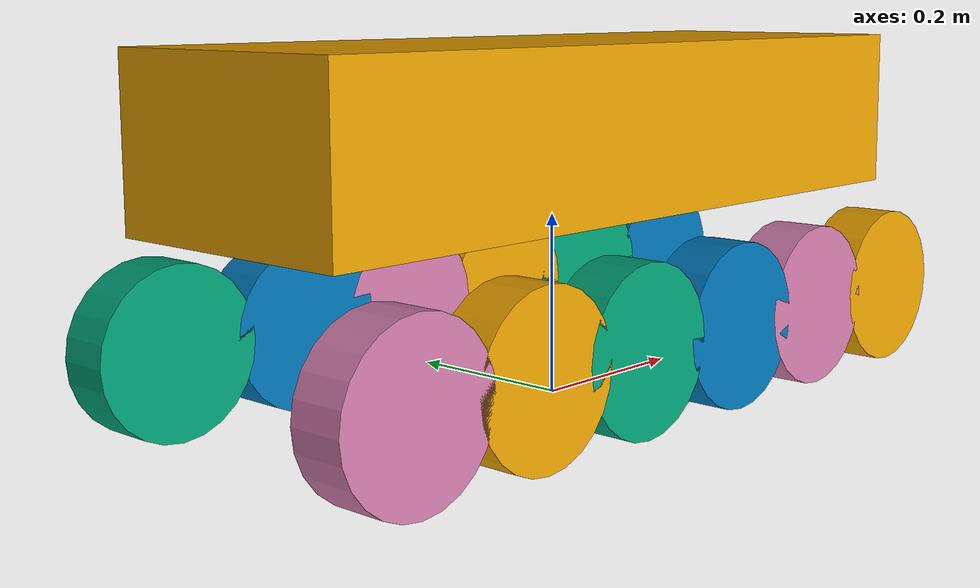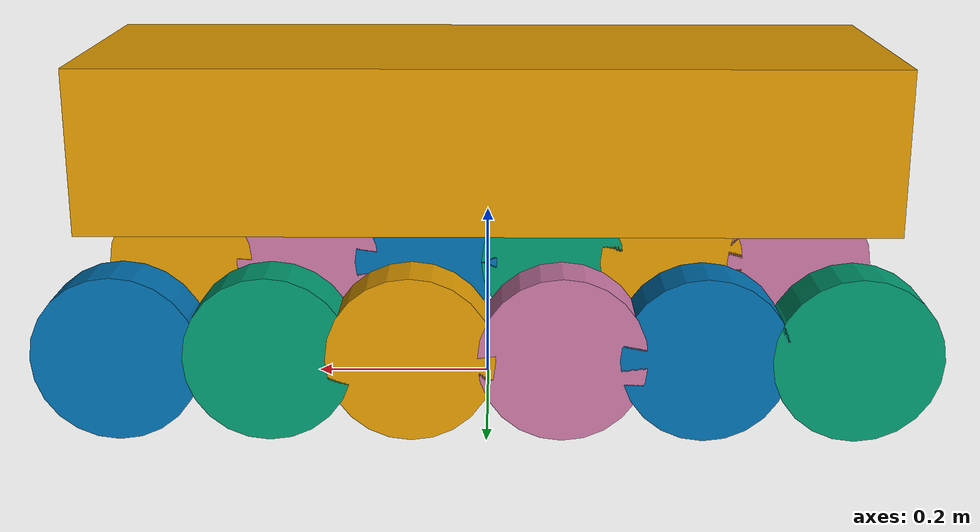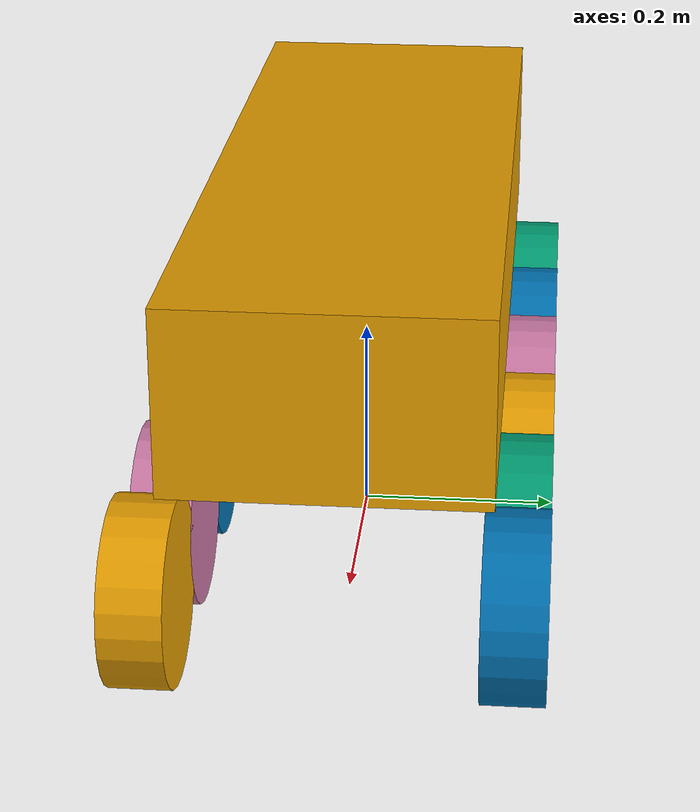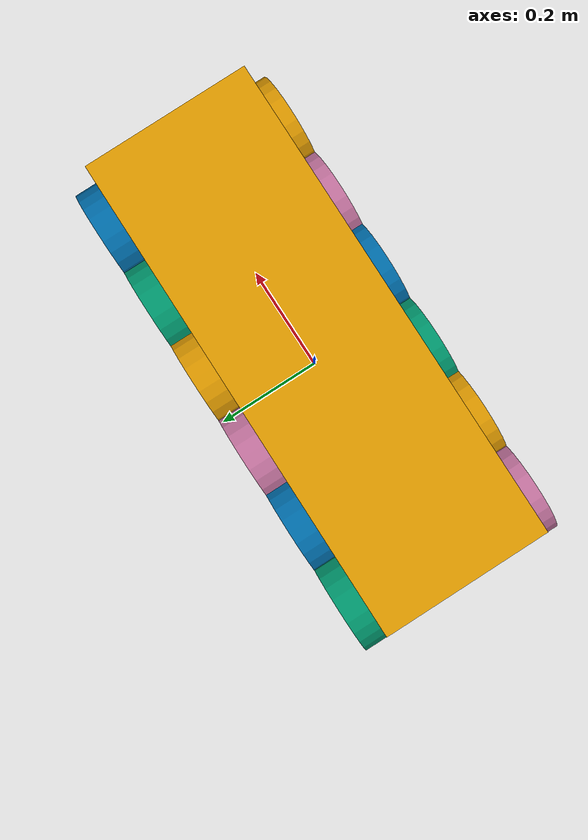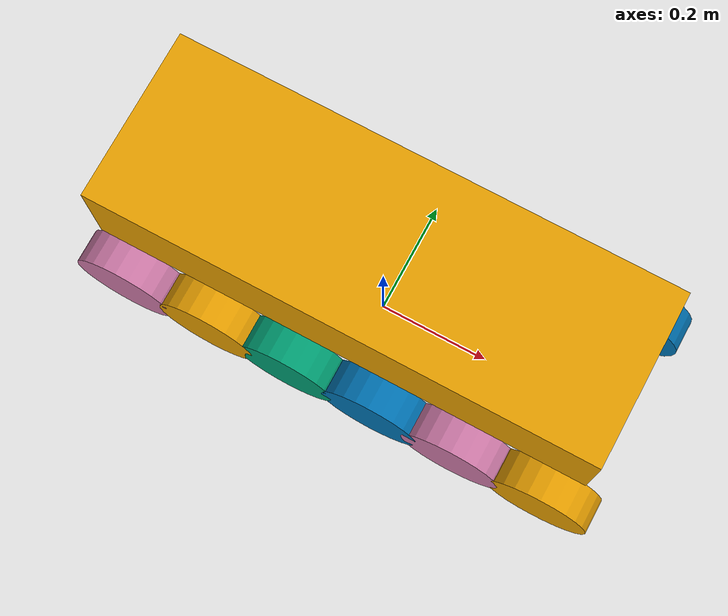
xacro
<?xml version='1.0'?>
<robot xmlns:xacro='http://www.ros.org/wiki/xacro' name='garden_tracked_inrow_narrow'>
  <xacro:property name='variant' value='tracked_inrow_narrow'/>
  <xacro:property name='mass_kg' value='45.0'/>
  <xacro:property name='track_gauge' value='0.34'/>
  <xacro:property name='wheel_radius' value='0.09'/>
  <xacro:property name='body_clearance' value='0.21'/>
  <link name='base_link'>
    <visual name='TRK6-BASE-001_visual'><origin xyz='0 0 0.3' rpy='0 0 0'/><geometry><box size='0.88 0.3 0.18'/></geometry></visual>
    <collision name='TRK6-BASE-001_collision'><origin xyz='0 0 0.29' rpy='0 0 0'/><geometry><box size='0.72 0.25 0.16'/></geometry></collision>
    <inertial><origin xyz='0 0 0.28' rpy='0 0 0'/><mass value='32.6'/><inertia ixx='0.33252' ixy='0' ixz='0' iyy='2.191806666666667' iyz='0' izz='2.3482866666666666'/></inertial>
  </link>
  <link name='left_carrier_0'/>
  <joint name='left_suspension_0' type='prismatic'><parent link='base_link'/><child link='left_carrier_0'/><origin xyz='-0.39 0.17 0.09' rpy='0 0 0'/><axis xyz='0 0 1'/><limit lower='-0.065' upper='0.065' effort='2500' velocity='1.5'/></joint>
  <link name='left_wheel'><visual name='TRK6-SPRUNG-NARROW-ROLLER-001_visual_left_0'><geometry><cylinder radius='0.09' length='0.06'/></geometry></visual><collision name='TRK6-SPRUNG-NARROW-ROLLER-001_collision_left_0'><geometry><cylinder radius='0.09' length='0.06'/></geometry></collision></link>
  <joint name='left_joint' type='continuous'><parent link='left_carrier_0'/><child link='left_wheel'/><origin xyz='0 0 0' rpy='1.57079632679 0 0'/><axis xyz='0 0 -1'/></joint>
  <link name='left_carrier_1'/>
  <joint name='left_suspension_1' type='prismatic'><parent link='base_link'/><child link='left_carrier_1'/><origin xyz='-0.23 0.17 0.09' rpy='0 0 0'/><axis xyz='0 0 1'/><limit lower='-0.065' upper='0.065' effort='2500' velocity='1.5'/></joint>
  <link name='left_wheel_1'><visual name='TRK6-SPRUNG-NARROW-ROLLER-001_visual_left_1'><geometry><cylinder radius='0.09' length='0.06'/></geometry></visual><collision name='TRK6-SPRUNG-NARROW-ROLLER-001_collision_left_1'><geometry><cylinder radius='0.09' length='0.06'/></geometry></collision></link>
  <joint name='left_joint_1' type='continuous'><parent link='left_carrier_1'/><child link='left_wheel_1'/><origin xyz='0 0 0' rpy='1.57079632679 0 0'/><axis xyz='0 0 -1'/></joint>
  <link name='left_carrier_2'/>
  <joint name='left_suspension_2' type='prismatic'><parent link='base_link'/><child link='left_carrier_2'/><origin xyz='-0.08 0.17 0.09' rpy='0 0 0'/><axis xyz='0 0 1'/><limit lower='-0.065' upper='0.065' effort='2500' velocity='1.5'/></joint>
  <link name='left_wheel_2'><visual name='TRK6-SPRUNG-NARROW-ROLLER-001_visual_left_2'><geometry><cylinder radius='0.09' length='0.06'/></geometry></visual><collision name='TRK6-SPRUNG-NARROW-ROLLER-001_collision_left_2'><geometry><cylinder radius='0.09' length='0.06'/></geometry></collision></link>
  <joint name='left_joint_2' type='continuous'><parent link='left_carrier_2'/><child link='left_wheel_2'/><origin xyz='0 0 0' rpy='1.57079632679 0 0'/><axis xyz='0 0 -1'/></joint>
  <link name='left_carrier_3'/>
  <joint name='left_suspension_3' type='prismatic'><parent link='base_link'/><child link='left_carrier_3'/><origin xyz='0.08 0.17 0.09' rpy='0 0 0'/><axis xyz='0 0 1'/><limit lower='-0.065' upper='0.065' effort='2500' velocity='1.5'/></joint>
  <link name='left_wheel_3'><visual name='TRK6-SPRUNG-NARROW-ROLLER-001_visual_left_3'><geometry><cylinder radius='0.09' length='0.06'/></geometry></visual><collision name='TRK6-SPRUNG-NARROW-ROLLER-001_collision_left_3'><geometry><cylinder radius='0.09' length='0.06'/></geometry></collision></link>
  <joint name='left_joint_3' type='continuous'><parent link='left_carrier_3'/><child link='left_wheel_3'/><origin xyz='0 0 0' rpy='1.57079632679 0 0'/><axis xyz='0 0 -1'/></joint>
  <link name='left_carrier_4'/>
  <joint name='left_suspension_4' type='prismatic'><parent link='base_link'/><child link='left_carrier_4'/><origin xyz='0.23 0.17 0.09' rpy='0 0 0'/><axis xyz='0 0 1'/><limit lower='-0.065' upper='0.065' effort='2500' velocity='1.5'/></joint>
  <link name='left_wheel_4'><visual name='TRK6-SPRUNG-NARROW-ROLLER-001_visual_left_4'><geometry><cylinder radius='0.09' length='0.06'/></geometry></visual><collision name='TRK6-SPRUNG-NARROW-ROLLER-001_collision_left_4'><geometry><cylinder radius='0.09' length='0.06'/></geometry></collision></link>
  <joint name='left_joint_4' type='continuous'><parent link='left_carrier_4'/><child link='left_wheel_4'/><origin xyz='0 0 0' rpy='1.57079632679 0 0'/><axis xyz='0 0 -1'/></joint>
  <link name='left_carrier_5'/>
  <joint name='left_suspension_5' type='prismatic'><parent link='base_link'/><child link='left_carrier_5'/><origin xyz='0.39 0.17 0.09' rpy='0 0 0'/><axis xyz='0 0 1'/><limit lower='-0.065' upper='0.065' effort='2500' velocity='1.5'/></joint>
  <link name='left_wheel_5'><visual name='TRK6-SPRUNG-NARROW-ROLLER-001_visual_left_5'><geometry><cylinder radius='0.09' length='0.06'/></geometry></visual><collision name='TRK6-SPRUNG-NARROW-ROLLER-001_collision_left_5'><geometry><cylinder radius='0.09' length='0.06'/></geometry></collision></link>
  <joint name='left_joint_5' type='continuous'><parent link='left_carrier_5'/><child link='left_wheel_5'/><origin xyz='0 0 0' rpy='1.57079632679 0 0'/><axis xyz='0 0 -1'/></joint>
  <link name='right_carrier_0'/>
  <joint name='right_suspension_0' type='prismatic'><parent link='base_link'/><child link='right_carrier_0'/><origin xyz='-0.39 -0.17 0.09' rpy='0 0 0'/><axis xyz='0 0 1'/><limit lower='-0.065' upper='0.065' effort='2500' velocity='1.5'/></joint>
  <link name='right_wheel'><visual name='TRK6-SPRUNG-NARROW-ROLLER-001_visual_right_0'><geometry><cylinder radius='0.09' length='0.06'/></geometry></visual><collision name='TRK6-SPRUNG-NARROW-ROLLER-001_collision_right_0'><geometry><cylinder radius='0.09' length='0.06'/></geometry></collision></link>
  <joint name='right_joint' type='continuous'><parent link='right_carrier_0'/><child link='right_wheel'/><origin xyz='0 0 0' rpy='1.57079632679 0 0'/><axis xyz='0 0 -1'/></joint>
  <link name='right_carrier_1'/>
  <joint name='right_suspension_1' type='prismatic'><parent link='base_link'/><child link='right_carrier_1'/><origin xyz='-0.23 -0.17 0.09' rpy='0 0 0'/><axis xyz='0 0 1'/><limit lower='-0.065' upper='0.065' effort='2500' velocity='1.5'/></joint>
  <link name='right_wheel_1'><visual name='TRK6-SPRUNG-NARROW-ROLLER-001_visual_right_1'><geometry><cylinder radius='0.09' length='0.06'/></geometry></visual><collision name='TRK6-SPRUNG-NARROW-ROLLER-001_collision_right_1'><geometry><cylinder radius='0.09' length='0.06'/></geometry></collision></link>
  <joint name='right_joint_1' type='continuous'><parent link='right_carrier_1'/><child link='right_wheel_1'/><origin xyz='0 0 0' rpy='1.57079632679 0 0'/><axis xyz='0 0 -1'/></joint>
  <link name='right_carrier_2'/>
  <joint name='right_suspension_2' type='prismatic'><parent link='base_link'/><child link='right_carrier_2'/><origin xyz='-0.08 -0.17 0.09' rpy='0 0 0'/><axis xyz='0 0 1'/><limit lower='-0.065' upper='0.065' effort='2500' velocity='1.5'/></joint>
  <link name='right_wheel_2'><visual name='TRK6-SPRUNG-NARROW-ROLLER-001_visual_right_2'><geometry><cylinder radius='0.09' length='0.06'/></geometry></visual><collision name='TRK6-SPRUNG-NARROW-ROLLER-001_collision_right_2'><geometry><cylinder radius='0.09' length='0.06'/></geometry></collision></link>
  <joint name='right_joint_2' type='continuous'><parent link='right_carrier_2'/><child link='right_wheel_2'/><origin xyz='0 0 0' rpy='1.57079632679 0 0'/><axis xyz='0 0 -1'/></joint>
  <link name='right_carrier_3'/>
  <joint name='right_suspension_3' type='prismatic'><parent link='base_link'/><child link='right_carrier_3'/><origin xyz='0.08 -0.17 0.09' rpy='0 0 0'/><axis xyz='0 0 1'/><limit lower='-0.065' upper='0.065' effort='2500' velocity='1.5'/></joint>
  <link name='right_wheel_3'><visual name='TRK6-SPRUNG-NARROW-ROLLER-001_visual_right_3'><geometry><cylinder radius='0.09' length='0.06'/></geometry></visual><collision name='TRK6-SPRUNG-NARROW-ROLLER-001_collision_right_3'><geometry><cylinder radius='0.09' length='0.06'/></geometry></collision></link>
  <joint name='right_joint_3' type='continuous'><parent link='right_carrier_3'/><child link='right_wheel_3'/><origin xyz='0 0 0' rpy='1.57079632679 0 0'/><axis xyz='0 0 -1'/></joint>
  <link name='right_carrier_4'/>
  <joint name='right_suspension_4' type='prismatic'><parent link='base_link'/><child link='right_carrier_4'/><origin xyz='0.23 -0.17 0.09' rpy='0 0 0'/><axis xyz='0 0 1'/><limit lower='-0.065' upper='0.065' effort='2500' velocity='1.5'/></joint>
  <link name='right_wheel_4'><visual name='TRK6-SPRUNG-NARROW-ROLLER-001_visual_right_4'><geometry><cylinder radius='0.09' length='0.06'/></geometry></visual><collision name='TRK6-SPRUNG-NARROW-ROLLER-001_collision_right_4'><geometry><cylinder radius='0.09' length='0.06'/></geometry></collision></link>
  <joint name='right_joint_4' type='continuous'><parent link='right_carrier_4'/><child link='right_wheel_4'/><origin xyz='0 0 0' rpy='1.57079632679 0 0'/><axis xyz='0 0 -1'/></joint>
  <link name='right_carrier_5'/>
  <joint name='right_suspension_5' type='prismatic'><parent link='base_link'/><child link='right_carrier_5'/><origin xyz='0.39 -0.17 0.09' rpy='0 0 0'/><axis xyz='0 0 1'/><limit lower='-0.065' upper='0.065' effort='2500' velocity='1.5'/></joint>
  <link name='right_wheel_5'><visual name='TRK6-SPRUNG-NARROW-ROLLER-001_visual_right_5'><geometry><cylinder radius='0.09' length='0.06'/></geometry></visual><collision name='TRK6-SPRUNG-NARROW-ROLLER-001_collision_right_5'><geometry><cylinder radius='0.09' length='0.06'/></geometry></collision></link>
  <joint name='right_joint_5' type='continuous'><parent link='right_carrier_5'/><child link='right_wheel_5'/><origin xyz='0 0 0' rpy='1.57079632679 0 0'/><axis xyz='0 0 -1'/></joint>
  <!-- Future CAD references: TRK6-BASE-001, TRK6-NARROW-BELT-001, TRK6-SPRUNG-NARROW-ROLLER-001. Visual and collision geometry remain separate. -->
</robot>
